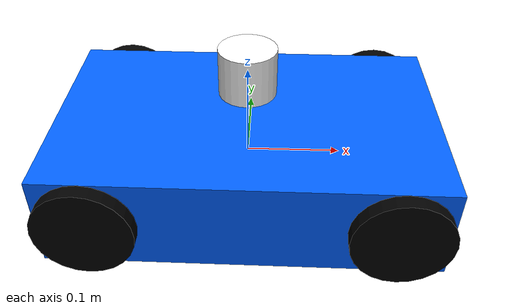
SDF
<sdf version='1.9'>
  <model name='eclipse_ackermann_bot'>
    <link name='base_link'>
      <inertial>
        <pose>0 0 0.001086956521739131 0 0 0</pose>
        <mass>5.0599999999999996</mass>
        <inertia>
          <ixx>0.050629021739130441</ixx>
          <ixy>0</ixy>
          <ixz>0</ixz>
          <iyy>0.050629021739130441</iyy>
          <iyz>0</iyz>
          <izz>0.050110000000000009</izz>
        </inertia>
      </inertial>
      <collision name='base_link_collision'>
        <pose>0 0 0 0 0 0</pose>
        <geometry>
          <box>
            <size>0.4 0.25 0.1</size>
          </box>
        </geometry>
      </collision>
      <collision name='base_link_fixed_joint_lump__lidar_link_collision_1'>
        <pose>0 0 0.1 0 0 0</pose>
        <geometry>
          <cylinder>
            <length>0.050000000000000003</length>
            <radius>0.029999999999999999</radius>
          </cylinder>
        </geometry>
        <surface>
          <contact>
            <ode/>
          </contact>
          <friction>
            <ode/>
          </friction>
        </surface>
      </collision>
      <visual name='base_link_visual'>
        <pose>0 0 0 0 0 0</pose>
        <geometry>
          <box>
            <size>0.4 0.25 0.1</size>
          </box>
        </geometry>
        <material>
          <diffuse>0 0.375 1 1</diffuse>
          <ambient>0 0.375 1 1</ambient>
        </material>
      </visual>
      <visual name='base_link_fixed_joint_lump__lidar_link_visual_1'>
        <pose>0 0 0.1 0 0 0</pose>
        <geometry>
          <cylinder>
            <length>0.050000000000000003</length>
            <radius>0.029999999999999999</radius>
          </cylinder>
        </geometry>
        <material>
          <diffuse>1 1 1 1</diffuse>
          <ambient>1 1 1 1</ambient>
        </material>
      </visual>
      <sensor name='imu_sensor' type='imu'>
        <always_on>true</always_on>
        <update_rate>100</update_rate>
        <topic>imu</topic>
        <imu>
          <angular_velocity>
            <x>
              <noise type='gaussian'>
                <mean>0</mean>
                <stddev>0.01</stddev>
              </noise>
            </x>
            <y>
              <noise type='gaussian'>
                <mean>0</mean>
                <stddev>0.01</stddev>
              </noise>
            </y>
            <z>
              <noise type='gaussian'>
                <mean>0</mean>
                <stddev>0.01</stddev>
              </noise>
            </z>
          </angular_velocity>
          <linear_acceleration>
            <x>
              <noise type='gaussian'>
                <mean>0</mean>
                <stddev>0.10000000000000001</stddev>
              </noise>
            </x>
            <y>
              <noise type='gaussian'>
                <mean>0</mean>
                <stddev>0.10000000000000001</stddev>
              </noise>
            </y>
            <z>
              <noise type='gaussian'>
                <mean>0</mean>
                <stddev>0.10000000000000001</stddev>
              </noise>
            </z>
          </linear_acceleration>
        </imu>
        <pose>0 0 0.05 0 -0 0</pose>
      </sensor>
      <sensor name='lidar_sensor' type='gpu_lidar'>
        <always_on>true</always_on>
        <update_rate>10</update_rate>
        <visualize>true</visualize>
        <topic>scan</topic>
        <ray>
          <scan>
            <horizontal>
              <samples>720</samples>
              <resolution>1</resolution>
              <min_angle>-1.5708</min_angle>
              <max_angle>1.5708</max_angle>
            </horizontal>
          </scan>
          <range>
            <min>0.12</min>
            <max>5</max>
            <resolution>0.01</resolution>
          </range>
          <noise>
            <type>gaussian</type>
            <stddev>0.01</stddev>
          </noise>
        </ray>
        <plugin name='gz::sim::systems::Sensors' filename='gz-sim-sensors-system'/>
        <pose>0 0 0.1 0 -0 0</pose>
      </sensor>
    </link>
    <joint name='front_left_wheel_steering_joint' type='revolute'>
      <pose relative_to='base_link'>0.15 0.125 0 0 0 0</pose>
      <parent>base_link</parent>
      <child>front_left_wheel_steering_link</child>
      <axis>
        <xyz>0 0 1</xyz>
        <limit>
          <lower>-0.59999999999999998</lower>
          <upper>0.59999999999999998</upper>
          <effort>100</effort>
          <velocity>10</velocity>
        </limit>
        <dynamics>
          <spring_reference>0</spring_reference>
          <spring_stiffness>0</spring_stiffness>
        </dynamics>
      </axis>
    </joint>
    <link name='front_left_wheel_steering_link'>
      <pose relative_to='front_left_wheel_steering_joint'>0 0 0 0 0 0</pose>
      <inertial>
        <pose>0 0 0 0 0 0</pose>
        <mass>0.01</mass>
        <inertia>
          <ixx>1.0000000000000001e-05</ixx>
          <ixy>0</ixy>
          <ixz>0</ixz>
          <iyy>1.0000000000000001e-05</iyy>
          <iyz>0</iyz>
          <izz>1.0000000000000001e-05</izz>
        </inertia>
      </inertial>
    </link>
    <joint name='front_left_wheel_joint' type='revolute'>
      <pose relative_to='front_left_wheel_steering_link'>0 0 0 0 0 0</pose>
      <parent>front_left_wheel_steering_link</parent>
      <child>front_left_wheel</child>
      <axis>
        <xyz>0 1 0</xyz>
        <limit>
          <lower>-10000000000000000</lower>
          <upper>10000000000000000</upper>
        </limit>
        <dynamics>
          <spring_reference>0</spring_reference>
          <spring_stiffness>0</spring_stiffness>
        </dynamics>
      </axis>
    </joint>
    <link name='front_left_wheel'>
      <pose relative_to='front_left_wheel_joint'>0 0 0 0 0 0</pose>
      <inertial>
        <pose>0 0 0 0 0 0</pose>
        <mass>0.5</mass>
        <inertia>
          <ixx>0.001</ixx>
          <ixy>0</ixy>
          <ixz>0</ixz>
          <iyy>0.001</iyy>
          <iyz>0</iyz>
          <izz>0.00050000000000000001</izz>
        </inertia>
      </inertial>
      <collision name='front_left_wheel_collision'>
        <pose>0 0 0 1.5708 0 0</pose>
        <geometry>
          <cylinder>
            <length>0.029999999999999999</length>
            <radius>0.050000000000000003</radius>
          </cylinder>
        </geometry>
        <surface>
          <contact>
            <ode>
              <kp>1000000</kp>
              <kd>100</kd>
              <max_vel>1</max_vel>
              <min_depth>0.001</min_depth>
            </ode>
          </contact>
          <friction>
            <ode>
              <mu>1.2</mu>
              <mu2>1.2</mu2>
            </ode>
          </friction>
        </surface>
      </collision>
      <visual name='front_left_wheel_visual'>
        <pose>0 0 0 1.5708 0 0</pose>
        <geometry>
          <cylinder>
            <length>0.029999999999999999</length>
            <radius>0.050000000000000003</radius>
          </cylinder>
        </geometry>
        <material>
          <diffuse>0 0 0 1</diffuse>
          <ambient>0 0 0 1</ambient>
        </material>
      </visual>
    </link>
    <joint name='front_right_wheel_steering_joint' type='revolute'>
      <pose relative_to='base_link'>0.15 -0.125 0 0 0 0</pose>
      <parent>base_link</parent>
      <child>front_right_wheel_steering_link</child>
      <axis>
        <xyz>0 0 1</xyz>
        <limit>
          <lower>-0.59999999999999998</lower>
          <upper>0.59999999999999998</upper>
          <effort>100</effort>
          <velocity>10</velocity>
        </limit>
        <dynamics>
          <spring_reference>0</spring_reference>
          <spring_stiffness>0</spring_stiffness>
        </dynamics>
      </axis>
    </joint>
    <link name='front_right_wheel_steering_link'>
      <pose relative_to='front_right_wheel_steering_joint'>0 0 0 0 0 0</pose>
      <inertial>
        <pose>0 0 0 0 0 0</pose>
        <mass>0.01</mass>
        <inertia>
          <ixx>1.0000000000000001e-05</ixx>
          <ixy>0</ixy>
          <ixz>0</ixz>
          <iyy>1.0000000000000001e-05</iyy>
          <iyz>0</iyz>
          <izz>1.0000000000000001e-05</izz>
        </inertia>
      </inertial>
    </link>
    <joint name='front_right_wheel_joint' type='revolute'>
      <pose relative_to='front_right_wheel_steering_link'>0 0 0 0 0 0</pose>
      <parent>front_right_wheel_steering_link</parent>
      <child>front_right_wheel</child>
      <axis>
        <xyz>0 1 0</xyz>
        <limit>
          <lower>-10000000000000000</lower>
          <upper>10000000000000000</upper>
        </limit>
        <dynamics>
          <spring_reference>0</spring_reference>
          <spring_stiffness>0</spring_stiffness>
        </dynamics>
      </axis>
    </joint>
    <link name='front_right_wheel'>
      <pose relative_to='front_right_wheel_joint'>0 0 0 0 0 0</pose>
      <inertial>
        <pose>0 0 0 0 0 0</pose>
        <mass>0.5</mass>
        <inertia>
          <ixx>0.001</ixx>
          <ixy>0</ixy>
          <ixz>0</ixz>
          <iyy>0.001</iyy>
          <iyz>0</iyz>
          <izz>0.00050000000000000001</izz>
        </inertia>
      </inertial>
      <collision name='front_right_wheel_collision'>
        <pose>0 0 0 1.5708 0 0</pose>
        <geometry>
          <cylinder>
            <length>0.029999999999999999</length>
            <radius>0.050000000000000003</radius>
          </cylinder>
        </geometry>
        <surface>
          <contact>
            <ode>
              <kp>1000000</kp>
              <kd>100</kd>
              <max_vel>1</max_vel>
              <min_depth>0.001</min_depth>
            </ode>
          </contact>
          <friction>
            <ode>
              <mu>1.2</mu>
              <mu2>1.2</mu2>
            </ode>
          </friction>
        </surface>
      </collision>
      <visual name='front_right_wheel_visual'>
        <pose>0 0 0 1.5708 0 0</pose>
        <geometry>
          <cylinder>
            <length>0.029999999999999999</length>
            <radius>0.050000000000000003</radius>
          </cylinder>
        </geometry>
        <material>
          <diffuse>0 0 0 1</diffuse>
          <ambient>0 0 0 1</ambient>
        </material>
      </visual>
    </link>
    <joint name='rear_left_wheel_joint' type='revolute'>
      <pose relative_to='base_link'>-0.15 0.125 0 0 0 0</pose>
      <parent>base_link</parent>
      <child>rear_left_wheel</child>
      <axis>
        <xyz>0 1 0</xyz>
        <limit>
          <lower>-10000000000000000</lower>
          <upper>10000000000000000</upper>
        </limit>
        <dynamics>
          <spring_reference>0</spring_reference>
          <spring_stiffness>0</spring_stiffness>
        </dynamics>
      </axis>
    </joint>
    <link name='rear_left_wheel'>
      <pose relative_to='rear_left_wheel_joint'>0 0 0 0 0 0</pose>
      <inertial>
        <pose>0 0 0 0 0 0</pose>
        <mass>0.5</mass>
        <inertia>
          <ixx>0.001</ixx>
          <ixy>0</ixy>
          <ixz>0</ixz>
          <iyy>0.001</iyy>
          <iyz>0</iyz>
          <izz>0.00050000000000000001</izz>
        </inertia>
      </inertial>
      <collision name='rear_left_wheel_collision'>
        <pose>0 0 0 1.5708 0 0</pose>
        <geometry>
          <cylinder>
            <length>0.029999999999999999</length>
            <radius>0.050000000000000003</radius>
          </cylinder>
        </geometry>
        <surface>
          <contact>
            <ode>
              <kp>1000000</kp>
              <kd>100</kd>
              <max_vel>1</max_vel>
              <min_depth>0.001</min_depth>
            </ode>
          </contact>
          <friction>
            <ode>
              <mu>1.2</mu>
              <mu2>1.2</mu2>
            </ode>
          </friction>
        </surface>
      </collision>
      <visual name='rear_left_wheel_visual'>
        <pose>0 0 0 1.5708 0 0</pose>
        <geometry>
          <cylinder>
            <length>0.029999999999999999</length>
            <radius>0.050000000000000003</radius>
          </cylinder>
        </geometry>
        <material>
          <diffuse>0 0 0 1</diffuse>
          <ambient>0 0 0 1</ambient>
        </material>
      </visual>
    </link>
    <joint name='rear_right_wheel_joint' type='revolute'>
      <pose relative_to='base_link'>-0.15 -0.125 0 0 0 0</pose>
      <parent>base_link</parent>
      <child>rear_right_wheel</child>
      <axis>
        <xyz>0 1 0</xyz>
        <limit>
          <lower>-10000000000000000</lower>
          <upper>10000000000000000</upper>
        </limit>
        <dynamics>
          <spring_reference>0</spring_reference>
          <spring_stiffness>0</spring_stiffness>
        </dynamics>
      </axis>
    </joint>
    <link name='rear_right_wheel'>
      <pose relative_to='rear_right_wheel_joint'>0 0 0 0 0 0</pose>
      <inertial>
        <pose>0 0 0 0 0 0</pose>
        <mass>0.5</mass>
        <inertia>
          <ixx>0.001</ixx>
          <ixy>0</ixy>
          <ixz>0</ixz>
          <iyy>0.001</iyy>
          <iyz>0</iyz>
          <izz>0.00050000000000000001</izz>
        </inertia>
      </inertial>
      <collision name='rear_right_wheel_collision'>
        <pose>0 0 0 1.5708 0 0</pose>
        <geometry>
          <cylinder>
            <length>0.029999999999999999</length>
            <radius>0.050000000000000003</radius>
          </cylinder>
        </geometry>
        <surface>
          <contact>
            <ode>
              <kp>1000000</kp>
              <kd>100</kd>
              <max_vel>1</max_vel>
              <min_depth>0.001</min_depth>
            </ode>
          </contact>
          <friction>
            <ode>
              <mu>1.2</mu>
              <mu2>1.2</mu2>
            </ode>
          </friction>
        </surface>
      </collision>
      <visual name='rear_right_wheel_visual'>
        <pose>0 0 0 1.5708 0 0</pose>
        <geometry>
          <cylinder>
            <length>0.029999999999999999</length>
            <radius>0.050000000000000003</radius>
          </cylinder>
        </geometry>
        <material>
          <diffuse>0 0 0 1</diffuse>
          <ambient>0 0 0 1</ambient>
        </material>
      </visual>
    </link>
    <plugin name='gz::sim::systems::JointStatePublisher' filename='gz-sim-joint-state-publisher-system'>
      <topic>joint_states</topic>
    </plugin>
    <plugin name='gz::sim::systems::JointController' filename='gz-sim-joint-controller-system'>
      <joint_name>rear_left_wheel_joint</joint_name>
      <topic>rear_left_wheel/cmd_vel</topic>
      <p_gain>1.0</p_gain>
      <i_gain>0.1</i_gain>
      <d_gain>0.01</d_gain>
      <i_max>1.0</i_max>
      <i_min>-1.0</i_min>
      <cmd_max>100.0</cmd_max>
      <cmd_min>-100.0</cmd_min>
    </plugin>
    <plugin name='gz::sim::systems::JointController' filename='gz-sim-joint-controller-system'>
      <joint_name>rear_right_wheel_joint</joint_name>
      <topic>rear_right_wheel/cmd_vel</topic>
      <p_gain>1.0</p_gain>
      <i_gain>0.1</i_gain>
      <d_gain>0.01</d_gain>
      <i_max>1.0</i_max>
      <i_min>-1.0</i_min>
      <cmd_max>100.0</cmd_max>
      <cmd_min>-100.0</cmd_min>
    </plugin>
    <plugin name='gz::sim::systems::JointPositionController' filename='gz-sim-joint-position-controller-system'>
      <joint_name>front_left_wheel_steering_joint</joint_name>
      <topic>front_left_steering/cmd_pos</topic>
      <p_gain>10.0</p_gain>
      <i_gain>0.1</i_gain>
      <d_gain>0.5</d_gain>
      <i_max>1.0</i_max>
      <i_min>-1.0</i_min>
      <cmd_max>100.0</cmd_max>
      <cmd_min>-100.0</cmd_min>
    </plugin>
    <plugin name='gz::sim::systems::JointPositionController' filename='gz-sim-joint-position-controller-system'>
      <joint_name>front_right_wheel_steering_joint</joint_name>
      <topic>front_right_steering/cmd_pos</topic>
      <p_gain>10.0</p_gain>
      <i_gain>0.1</i_gain>
      <d_gain>0.5</d_gain>
      <i_max>1.0</i_max>
      <i_min>-1.0</i_min>
      <cmd_max>100.0</cmd_max>
      <cmd_min>-100.0</cmd_min>
    </plugin>
    <plugin name='ignition::gazebo::systems::PosePublisher' filename='libignition-gazebo-pose-publisher-system.so'>
      <publish_link_pose>true</publish_link_pose>
      <publish_sensor_pose>false</publish_sensor_pose>
      <publish_collision_pose>false</publish_collision_pose>
      <publish_visual_pose>false</publish_visual_pose>
      <publish_nested_model_pose>false</publish_nested_model_pose>
      <update_frequency>50</update_frequency>
    </plugin>
    <frame name='imu_joint' attached_to='base_link'>
      <pose>0 0 0.05 0 -0 0</pose>
    </frame>
    <frame name='imu_link' attached_to='imu_joint'/>
    <frame name='lidar_joint' attached_to='base_link'>
      <pose>0 0 0.1 0 -0 0</pose>
    </frame>
    <frame name='lidar_link' attached_to='lidar_joint'/>
  </model>
</sdf>
